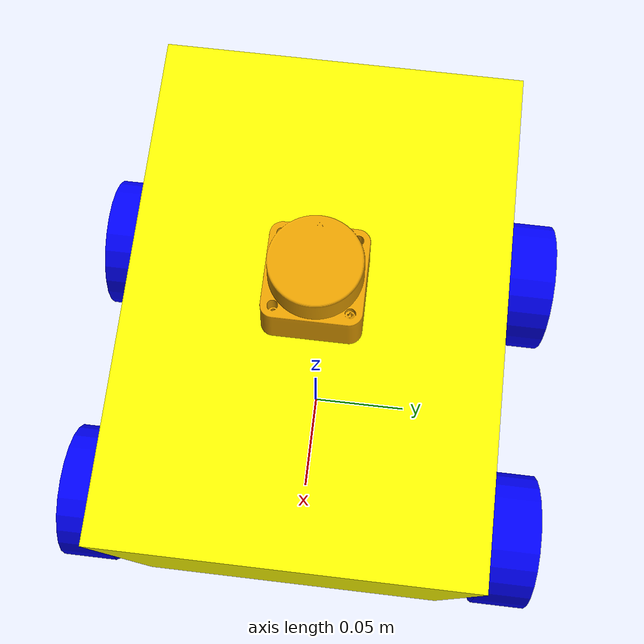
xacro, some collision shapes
<?xml version="1.0"?>
<robot xmlns:xacro="http://www.ros.org/wiki/xacro" name="robot">

    <xacro:arg name="sim_mode" default="true"/>
    <xacro:arg name="serial_device" default="/dev/ttyAMA2"/>
    <xacro:arg name="baud_rate" default="921600"/>
    <xacro:arg name="encoder_ticks_per_rev" default="1320"/>
    <xacro:arg name="wheel_radius" default="0.034"/>
    <!-- Name of the robot in a simulation shared by several robots (Gazebo topics, controller manager namespace) -->
    <xacro:arg name="robot_ns" default=""/>
    <xacro:arg name="camera" default="false"/>

    <xacro:include filename="materials.xacro" />
    <xacro:include filename="inertia.xacro" />
    <xacro:include filename="robot_core.xacro" />
    <xacro:if value="$(arg camera)">
        <xacro:include filename="camera.xacro" />
    </xacro:if>
    <xacro:include filename="ros2_control.xacro" />
    <xacro:include filename="imu.xacro" />
    <xacro:include filename="lidar.xacro" />
</robot>

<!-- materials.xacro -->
<robot xmlns:xacro="http://www.ros.org/wiki/xacro" >
    <!-- define colors -->
    <material name="white">
        <color rgba="1 1 1 1" />
    </material>
    <material name="yellow">
        <color rgba="1 1 0 1"/>
    </material>

    <material name="blue">
        <color rgba="${0/255} ${0/255} ${255/255} 1.0"/>
    </material>

    <material name="grey">
        <color rgba="0.5 0.5 0.5 1" />
    </material>

    <material name="black">
        <color rgba="0 0 0 1" />
    </material>

    <!-- define gazebo materials -->
    <material name="gazebo_white">
        <color rgba="1 1 1 1" />
        <ambient>1 1 1 1</ambient>
        <diffuse>1 1 1 1</diffuse>
        <specular>.1 .1 .1 128</specular>
    </material>

    <material name="gazebo_blue">
        <color rgba="${0/255} ${0/255} ${255/255} 1.0"/>
        <ambient>0 0 1</ambient>
        <diffuse>0 0 1</diffuse>
        <specular>0.1 0.1 0.1 1 1</specular>
    </material>

    <material name="gazebo_grey">
        <color rgba="0.5 0.5 0.5 1" />
        <ambient>0.5 0.5 0.5 1</ambient>
        <diffuse>0.5 0.5 0.5 1</diffuse>
        <specular>0.1 0.1 0.1 1</specular>
    </material>

    <material name="gazebo_black">
        <color rgba="0 0 0 1" />
        <ambient>0 0 0 1</ambient>
        <diffuse>0 0 0 1</diffuse>
        <specular>0.1 0.1 0.1 1</specular>
    </material>
</robot>

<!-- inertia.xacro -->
<robot xmlns:xacro="http://www.ros.org/wiki/xacro" >
    <!-- Inertia macro -->
    <xacro:macro name="inertial_box" params="mass x y z *origin">
        <inertial>
            <xacro:insert_block name="origin"/>
            <mass value="${mass}" />
            <inertia ixx="${(1/12) * mass * (y*y+z*z)}" ixy="0.0" ixz="0.0"
                    iyy="${(1/12) * mass * (x*x+z*z)}" iyz="0.0"
                    izz="${(1/12) * mass * (x*x+y*y)}" />
        </inertial>
    </xacro:macro>

    <xacro:macro name="inertial_cylinder" params="mass length radius *origin">
        <inertial>
            <xacro:insert_block name="origin"/>
            <mass value="${mass}" />
            <inertia ixx="${(1/12) * mass * (3*radius*radius + length*length)}" ixy="0.0" ixz="0.0"
                    iyy="${(1/12) * mass * (3*radius*radius + length*length)}" iyz="0.0"
                    izz="${(1/2) * mass * (radius*radius)}" />
        </inertial>
    </xacro:macro>
</robot>

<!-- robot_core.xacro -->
<robot xmlns:xacro="http://www.ros.org/wiki/xacro" >

    <!-- base dimensions -->
    <xacro:property name="base_x_size" value="0.21" />
    <xacro:property name="base_y_size" value="0.15" />
    <xacro:property name="base_z_size" value="0.1" />

    <!-- wheel properties -->
    <xacro:property name="wheel_radius" value="$(arg wheel_radius)" />
    <xacro:property name="axle_separation" value="0.140" />
    <xacro:property name="wheel_separation" value="0.210" />
    <xacro:property name="axis_offset_from_base" value="0.035" />

    <!-- material density -->
    <xacro:property name="base_density" value="1500.0" />
    <xacro:property name="wheel_density" value="400.0" />

    <!-- base and wheel mass -->
    <xacro:property name="base_mass" value="2.200" />
    <xacro:property name="wheel_mass" value="0.035" />

    <!-- base link -->
    <link name="base_link">
    </link>

    <!-- base_footprint link -->
    <link name="base_footprint">
    </link>

    <joint name="base_footprint_joint" type="fixed">
        <parent link="base_footprint"/>
        <child link="base_link"/>
        <origin xyz="0 0 ${wheel_radius + axis_offset_from_base}" rpy="0 0 0"/>
    </joint>

    <!-- chassis -->
    <link name="chassis">
        <visual>
            <geometry>
                <mesh filename = "package://kpi_rover_description/meshes/kpi_rover_body.stl" scale="0.001 0.001 0.001"/>
            </geometry>
            <material name="yellow"/>
        </visual>
        <!-- A box of the mesh size, as the mesh (~600k triangles) collides with uneven ground very slowly -->
        <collision>
            <origin xyz="0 0 0.032" rpy="0 0 0"/>
            <geometry>
                <box size="${base_x_size} ${base_y_size} 0.16"/>
            </geometry>
        </collision>
        <xacro:inertial_box mass="${base_mass}" x="${base_x_size}" y="${base_y_size}" z="${base_z_size}">
            <origin xyz="0 0 0" rpy="0 0 0"/>
        </xacro:inertial_box>
    </link>

    <joint name="chassis_joint" type="fixed">
        <parent link="base_link"/>
        <child link="chassis"/>
        <origin xyz="0 0 0"/>
    </joint>

    <gazebo reference="chassis">
        <material name="gazebo_white"/>
    </gazebo>

    <!-- wheels -->
    <xacro:macro name="wheel" params="prefix x_reflect y_reflect mu1 mu2">
        <link name="${prefix}_link">
            <visual>
                <geometry>
                    <cylinder radius="${wheel_radius}" length="0.027"/>
                </geometry>
                <material name="blue"/>
            </visual>
            <collision>
                <geometry>
                    <cylinder radius="${wheel_radius}" length="0.027"/>
                </geometry>
            </collision>
            <xacro:inertial_cylinder mass="${wheel_mass}" length="0.020" radius="${wheel_radius}">
                <origin xyz="0 0 0" rpy="0 0 0"/>
            </xacro:inertial_cylinder>
        </link>

        <joint name="${prefix}_joint" type="continuous">
            <parent link="base_link"/>
            <child link="${prefix}_link"/>
            <origin xyz="${x_reflect*axle_separation/2} ${y_reflect*wheel_separation/2} ${-axis_offset_from_base}" rpy="${-y_reflect*pi/2} 0 0"/>
            <axis xyz="0 0 ${y_reflect}"/>
        </joint>

        <gazebo reference="${prefix}_link">
            <material name="gazebo_blue"/>
            <mu1 value="${mu1}"/>
            <mu2 value="${mu2}"/>
        </gazebo>
    </xacro:macro>

    <xacro:wheel prefix="front_left_wheel" x_reflect="1" y_reflect="1" mu1="0.2" mu2="0.2"/>
    <xacro:wheel prefix="front_right_wheel" x_reflect="1" y_reflect="-1" mu1="0.2" mu2="0.2"/>
    <xacro:wheel prefix="rear_left_wheel" x_reflect="-1" y_reflect="1" mu1="5.0" mu2="0.2"/>
    <xacro:wheel prefix="rear_right_wheel" x_reflect="-1" y_reflect="-1" mu1="5.0" mu2="0.2"/>

</robot>

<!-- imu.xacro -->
<robot xmlns:xacro="http://www.ros.org/wiki/xacro" >
    <joint name="imu_joint" type="fixed">
        <parent link="base_link"/>
        <child link="imu_link"/>
        <origin xyz="-0.036 0.039 0.015" rpy="0 0 ${pi/2}"/>
    </joint>

    <link name="imu_link"/>

    <gazebo reference="imu_link">
        <sensor type="imu" name="imu">
            <always_on>1</always_on>
            <visualize>false</visualize>
            <topic>$(arg robot_ns)/imu_broadcaster/imu</topic>
            <gz_frame_id>imu_link</gz_frame_id>
        </sensor>
    </gazebo>
</robot>

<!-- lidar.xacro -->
<robot xmlns:xacro="http://www.ros.org/wiki/xacro" >

    <joint name="laser_joint" type="fixed">
        <parent link="base_link"/>
        <child link="laser_frame"/>
        <origin xyz="0 0 0.12" rpy="0 0 ${pi}"/>
    </joint>
    <link name="laser_frame">
        <visual>
            <geometry>
                <mesh filename = "package://kpi_rover_description/meshes/lidar.stl" scale="0.001 0.001 0.001"/>
            </geometry>
        </visual>
        <inertial>
            <mass value="1e-5"/>
            <origin xyz="0.1 0 0.05" rpy="0 0 0"/>
            <inertia
                ixx="1e-6" ixy="0" ixz="0"
                iyy="1e-6" iyz="0"
                izz="1e-6"
            />
        </inertial>
        <collision name='collision'>
            <origin xyz="0.1 0 0.05" rpy="0 0 0"/>
            <geometry>
                <box size=".1 .1 .1"/>
            </geometry>
        </collision>
    </link>
    <gazebo reference="laser_frame">
        <selfCollide>false</selfCollide>
        <mu1 value="0.05" />
        <mu2 value="0.05" />
    </gazebo>
    <gazebo reference="laser_frame">
        <sensor name="gpu_lidar" type="gpu_lidar">
        <update_rate>30</update_rate>
        <topic>$(arg robot_ns)/scan</topic>
        <gz_frame_id>laser_frame</gz_frame_id>
        <lidar>
            <scan>
            <horizontal>
                <samples>720</samples>
                <!--(max_angle-min_angle)/samples * resolution -->
                <resolution>1</resolution>
                <min_angle>-3.14156</min_angle>
                <max_angle>3.14156</max_angle>
            </horizontal>
            <!-- Dirty hack for fake lidar detections with ogre 1 rendering in VM -->
            </scan>
            <range>
            <min>0.05</min>
            <max>10.0</max>
            <resolution>0.01</resolution>
            </range>
            <noise>
                <type>gaussian</type>
                <mean>0.0</mean>
                <stddev>0.01</stddev>
            </noise>
            <frame_id>laser_frame</frame_id>
            <visibility_mask>4294967289</visibility_mask>
        </lidar>
        <always_on>1</always_on>
        <visualize>true</visualize>
        </sensor>
    </gazebo>
</robot>
